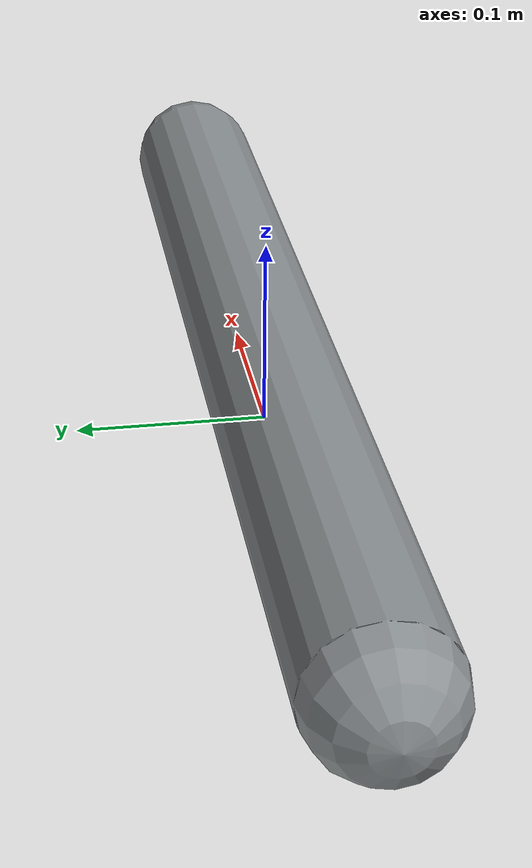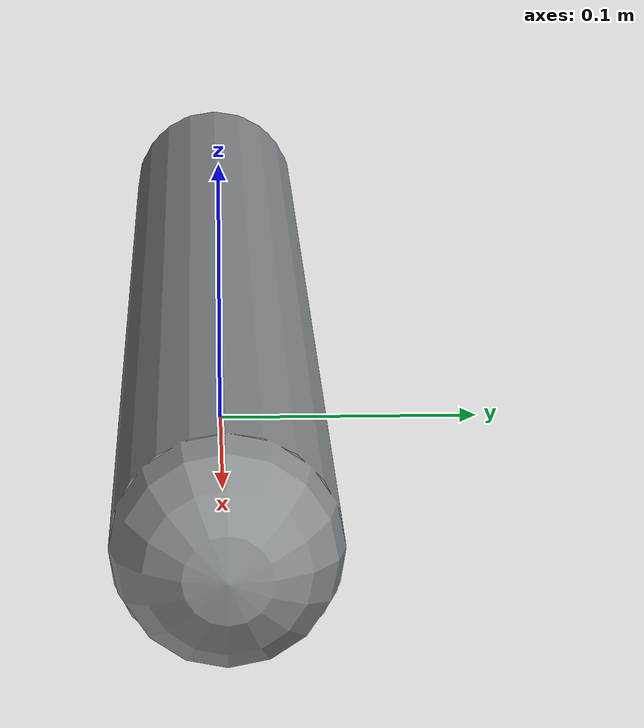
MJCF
<mujoco model="stick_prim_grey_36">
  <compiler angle="radian"/>
  <asset>
  </asset>
  <worldbody>
    <body name="stick_prim_grey_36">
      <freejoint/>
      <geom name="stick_prim_grey_36_g0" type="capsule" size="0.036" fromto="-0.289 0 0.036 0.289 0 0.036" rgba="0.55 0.57 0.58 1" mass="0.05" friction="0.05 0.05 0.005" condim="4"/>
    </body>
  </worldbody>
</mujoco>
